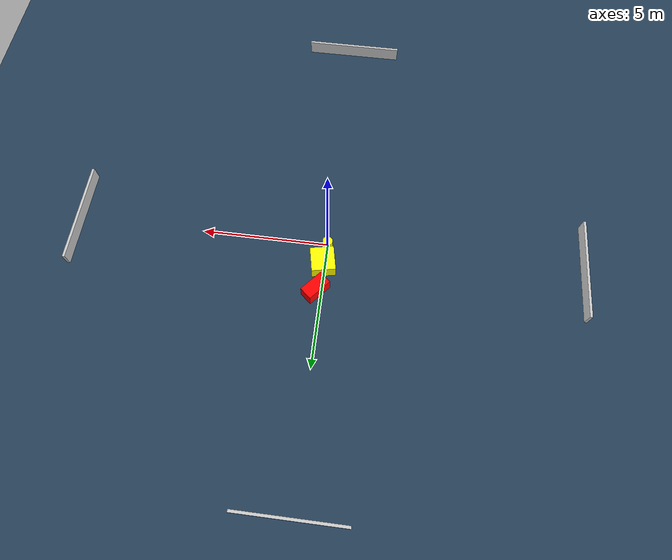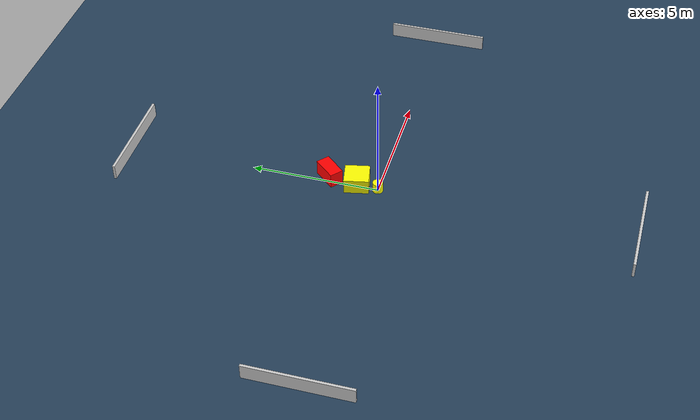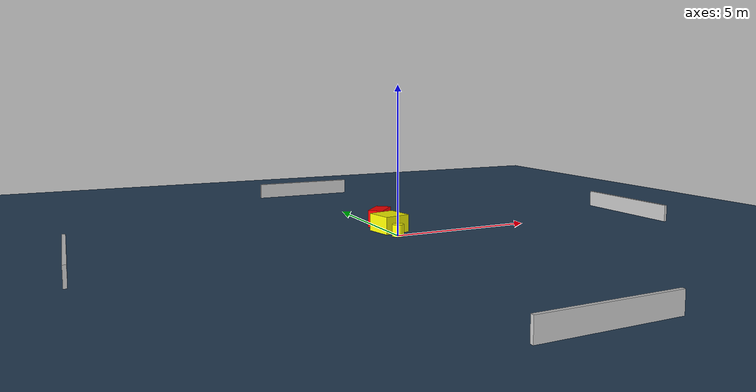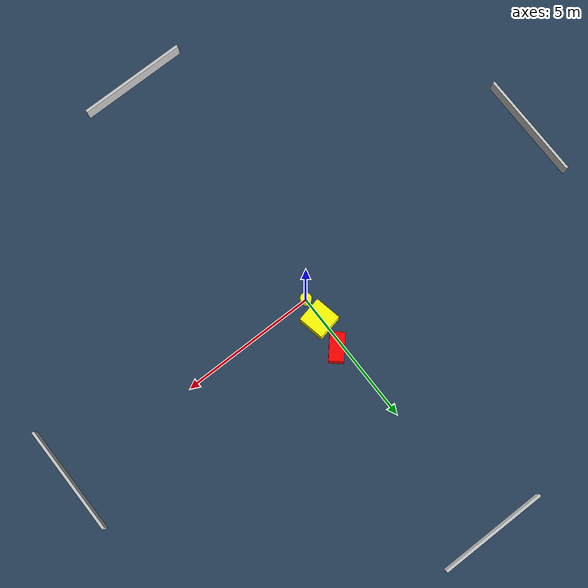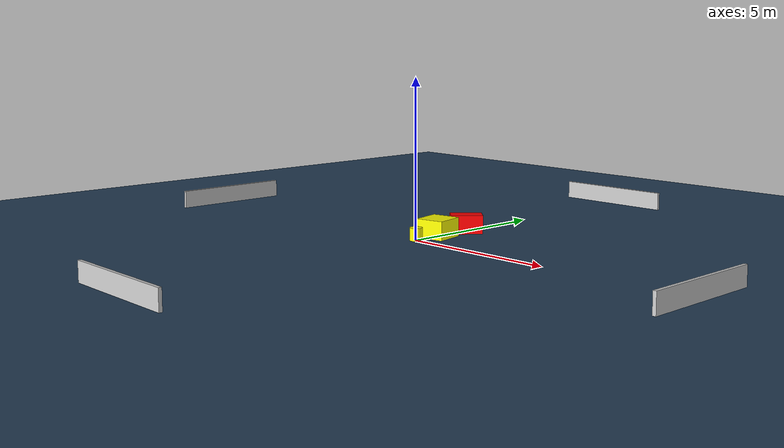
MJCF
<?xml version="1.0" ?>
<mujoco model="generated_environment">
  <option timestep="0.01" integrator="RK4" cone="elliptic"/>
  <default>
    <geom density="1"/>
  </default>
  <asset>
    <texture builtin="gradient" height="3072" name="skybox" rgb1="0.3 0.5 0.7" rgb2="0 0 0" type="skybox" width="512"/>
    <texture builtin="checker" height="300" name="groundplane" rgb1="0.2 0.3 0.4" rgb2="0.1 0.2 0.3" type="2d" width="300"/>
    <material name="groundplane" reflectance="0.2" texrepeat="5 5" texture="groundplane"/>
  </asset>
  <worldbody>
    <light dir="0 0 -1" directional="true" pos="0 0 1.5"/>
    <geom condim="3" friction="0.5 0.005 0.001" material="groundplane" name="floor" pos="0 0 0" size="0 0 0.05" type="plane"/>
    <body name="walls">
      <geom name="wall_1" condim="4" pos="-10.0 0.0 0.3" rgba="0.800000011920929 0.800000011920929 0.800000011920929 1.0" size="0.05 2.0 0.3" type="box"/>
      <geom name="wall_2" condim="4" pos="10.0 0.0 0.3" rgba="0.800000011920929 0.800000011920929 0.800000011920929 1.0" size="0.05 2.0 0.3" type="box"/>
      <geom name="wall_3" condim="4" pos="0.0 -10.0 0.3" rgba="0.800000011920929 0.800000011920929 0.800000011920929 1.0" size="2.0 0.05 0.3" type="box"/>
      <geom name="wall_4" condim="4" pos="0.0 10.0 0.3" rgba="0.800000011920929 0.800000011920929 0.800000011920929 1.0" size="2.0 0.05 0.3" type="box"/>
    </body>
    <body name="robot">
      <joint name="joint_x" type="slide" pos="0 0 0" axis="1 0 0"/>
      <joint name="joint_y" type="slide" pos="0 0 0" axis="0 1 0"/>
      <geom name="robot" type="cylinder" pos="0.0 0.0 0.2" size="0.2 0.2 0.0" mass="5.0" friction="1.0 0.005 0.0001" condim="4" rgba="1.0 1.0 0.0 1.0"/>
    </body>
    <body name="obstacle_1_movable">
      <geom name="obstacle_1_movable" condim="4" pos="0.08450153411469052 0.8535030596963136 0.3" euler="0 0 281.49033460093005" friction="0.0 0.005 0.001" rgba="1.0 1.0 0.0 1.0" size="0.4816834334883868 0.46275731383329904 0.3" type="box" mass="0.1"/>
      <joint type="free"/>
    </body>
    <body name="obstacle_2_static">
      <geom name="obstacle_2_static" condim="4" pos="0.2228752767389349 1.983061739943725 0.3" euler="0 0 228.87289457186282" friction="0.0 0.005 0.001" rgba="1.0 0.0 0.0 1.0" size="0.5051018872484551 0.266227765968703 0.3" type="box"/>
    </body>
  </worldbody>
  <actuator>
    <motor name="actuator_x" joint="joint_x" gear="1" ctrlrange="-1 1"/>
    <motor name="actuator_y" joint="joint_y" gear="1" ctrlrange="-1 1"/>
  </actuator>
</mujoco>
